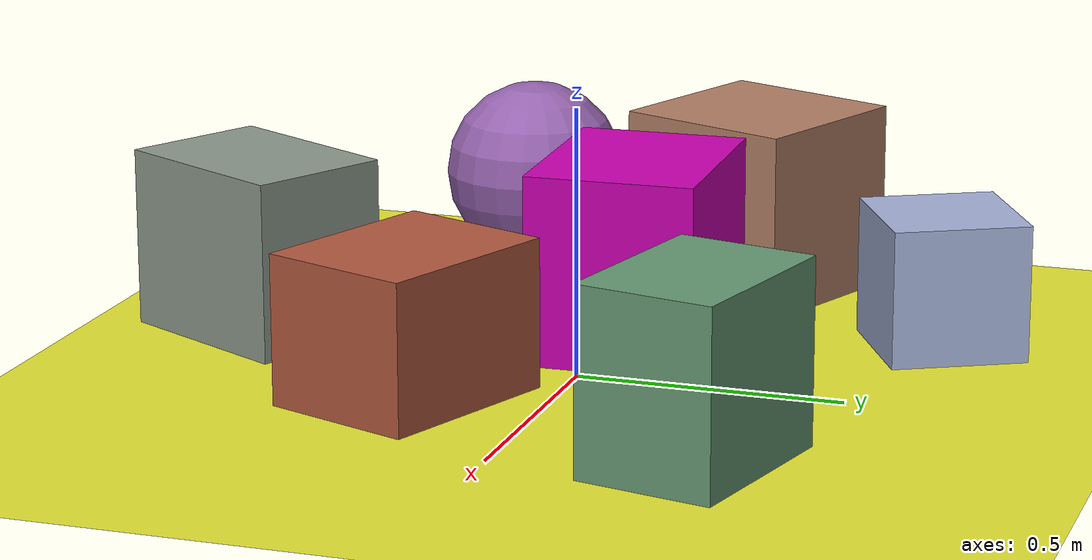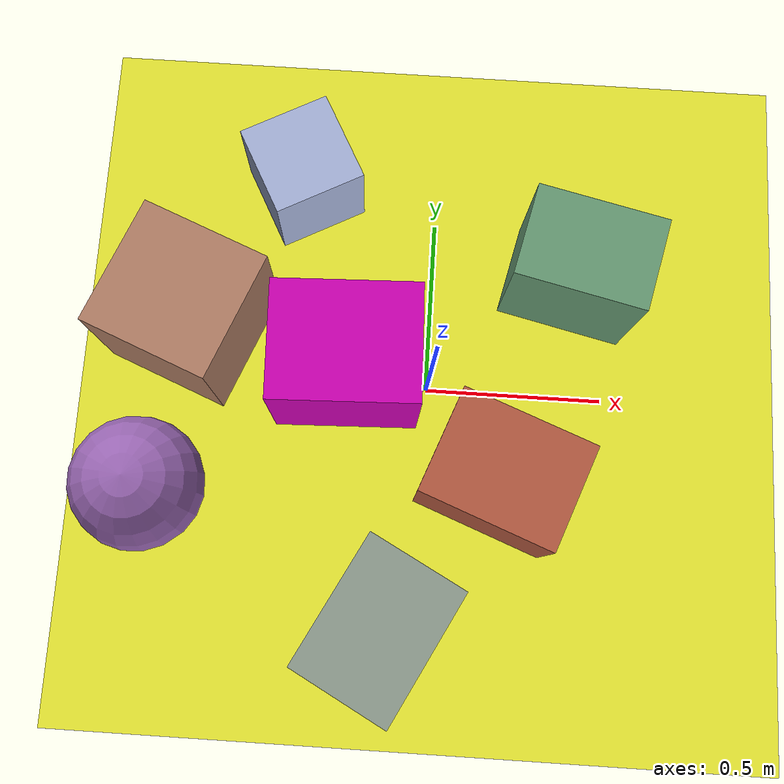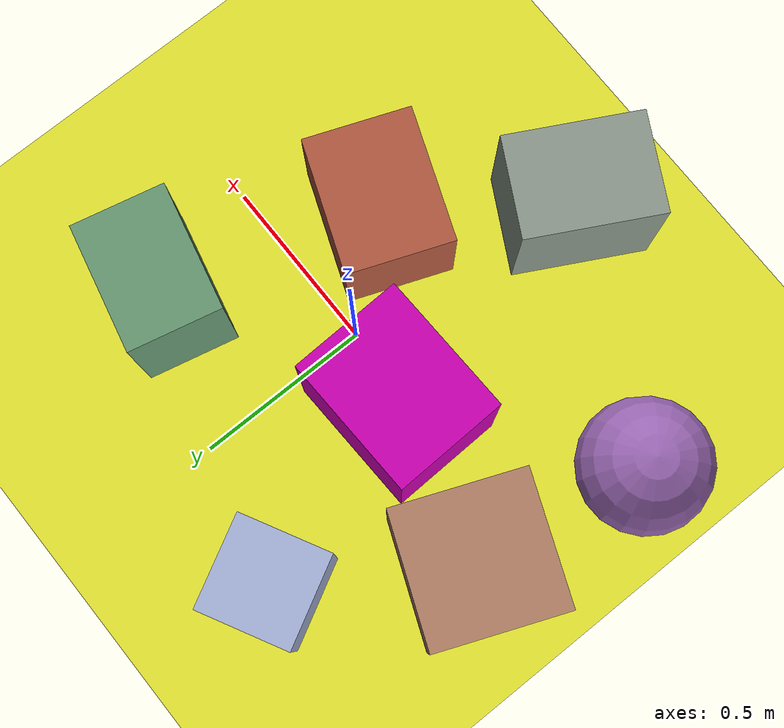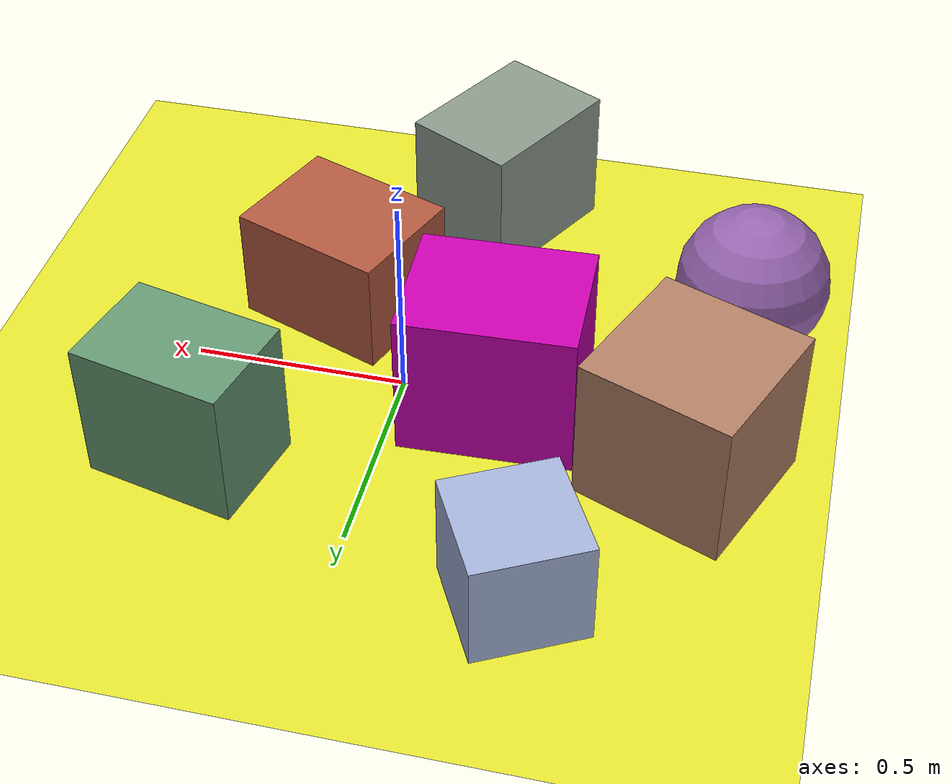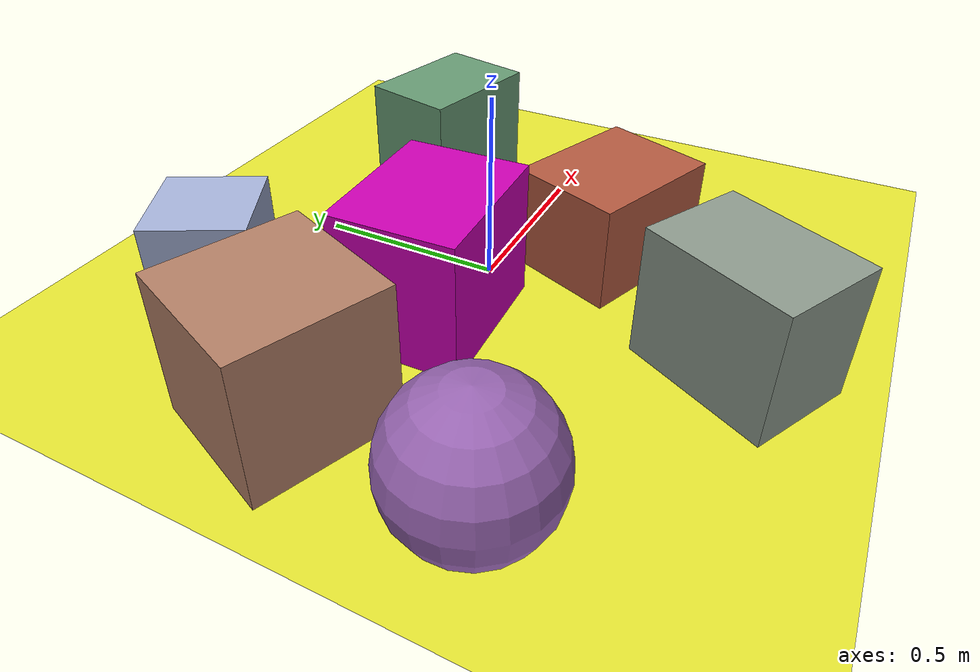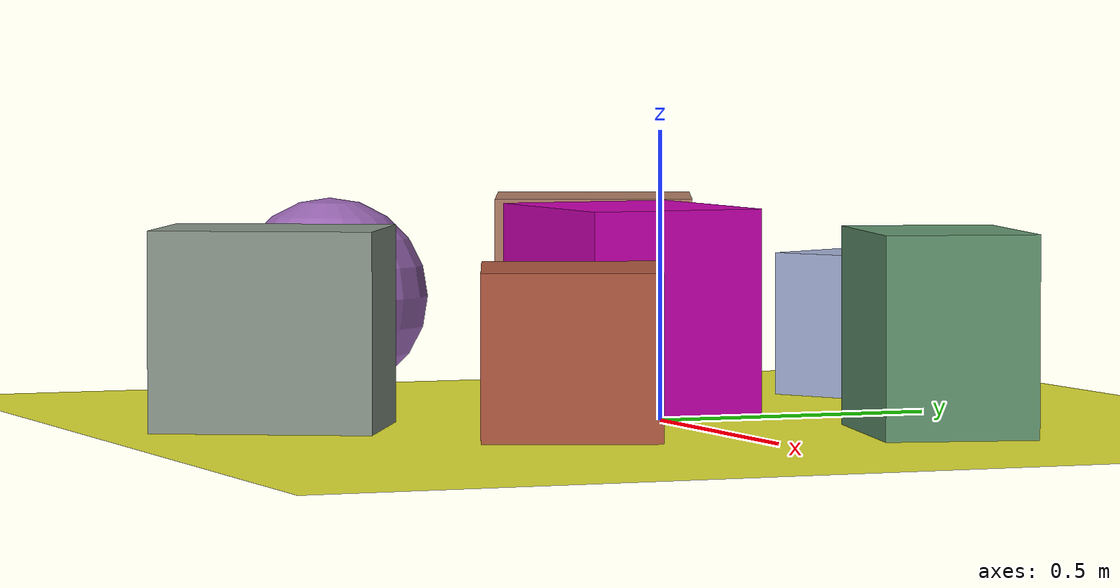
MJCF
<mujoco>
   <asset>
<texture type="skybox" builtin="gradient" rgb1="0.9 0.2 0.7" rgb2="0.1 0.2 0.3" width="256" height="256"/>
<texture name="flat_0" builtin="flat" rgb1="0.7 0.5 0.4" rgb2="0.7 0.5 0.4"  width="200" height="200"/>
<texture name="checker_1" builtin="checker" rgb1="0.4 0.1 0.0" rgb2="1.0 0.6 0.5" width="200" height="200"/>
<texture name="checker_2" builtin="checker" rgb1="0.4 0.5 0.3" rgb2="0.4 0.7 0.6" width="200" height="200"/>
<texture name="checker_3" builtin="checker" rgb1="0.7 1.0 1.0" rgb2="0.6 0.4 0.7" width="200" height="200"/>
<texture name="flat_4" builtin="flat" rgb1="0.8 0.0 0.7" rgb2="0.8 0.0 0.7"  width="200" height="200"/>
<texture name="gradient_5" builtin="gradient" rgb1="0.5 0.1 0.6" rgb2="0.7 0.7 0.8" width="200" height="200"/>
<texture name="checker_6" builtin="checker" rgb1="0.7 0.3 0.2" rgb2="0.4 0.9 0.9" width="200" height="200"/><material name="flat_0_mat" reflectance="0" texture="flat_0" texuniform="true"/>
<material name="checker_1_mat" reflectance="0" texrepeat="10 10" texture="checker_1" texuniform="false" />
<material name="checker_2_mat" reflectance="0" texrepeat="5 5" texture="checker_2" texuniform="false" />
<material name="checker_3_mat" reflectance="0" texrepeat="10 10" texture="checker_3" texuniform="false" />
<material name="flat_4_mat" reflectance="0" texture="flat_4" texuniform="true"/>
<material name="gradient_5_mat" reflectance="0" texture="gradient_5" texuniform="true"/>
<material name="checker_6_mat" reflectance="0" texrepeat="6 6" texture="checker_6" texuniform="false" />
   </asset>

   <worldbody>
      <light diffuse=".9 .9 .9" pos="0 0 3" dir="0 0 -1"/>
     <geom type="plane" size="1 1 0.1" rgba="0.9 0.9 0.2 1"/>
<geom type="box" pos="-0.68 0.15 0.18" size="0.18 0.18 0.18" material="flat_0_mat" euler="0 0 68" />
<geom type="box" pos="0.21 -0.25 0.14" size="0.15 0.19 0.14" material="checker_1_mat" euler="0 0 69" />
<geom type="box" pos="0.4 0.34 0.17" size="0.13 0.18 0.17" material="checker_2_mat" euler="0 0 77" />
<geom type="box" pos="-0.39 0.59 0.13" size="0.13 0.13 0.13" material="checker_3_mat" euler="0 0 28" />
<geom type="box" pos="-0.23 0.04 0.18" size="0.2 0.16 0.18" material="flat_4_mat" euler="0 0 2" />
<geom type="sphere" pos="-0.76 -0.34 0.18" size="0.18 0.18 0.18" material="gradient_5_mat" euler="0 0 83" />
<geom type="box" pos="-0.1 -0.67 0.17" size="0.19 0.14 0.17" material="checker_6_mat" euler="0 0 62" /><camera euler="60 0 180" fovy="60" name="camera1" pos="-0.2 -1.5 1"></camera>   </worldbody>
</mujoco>
